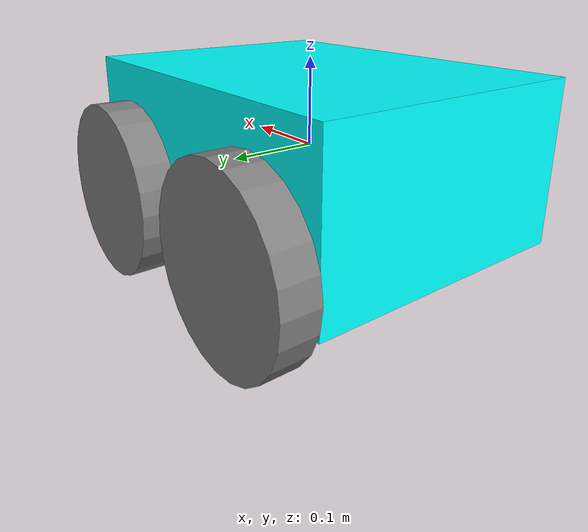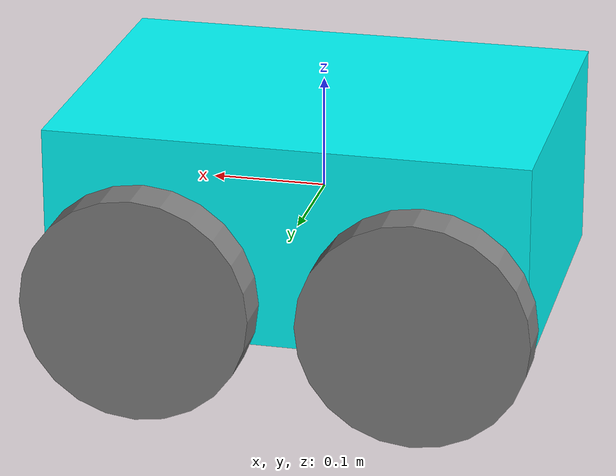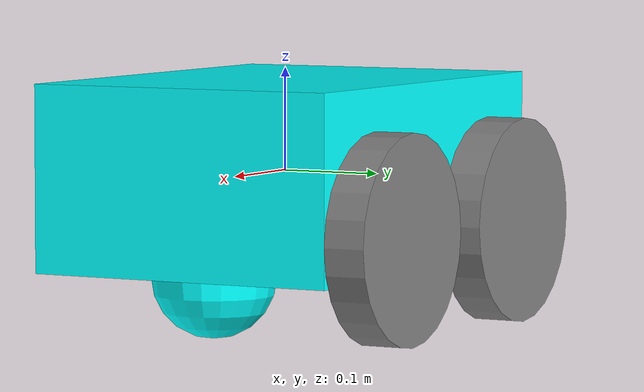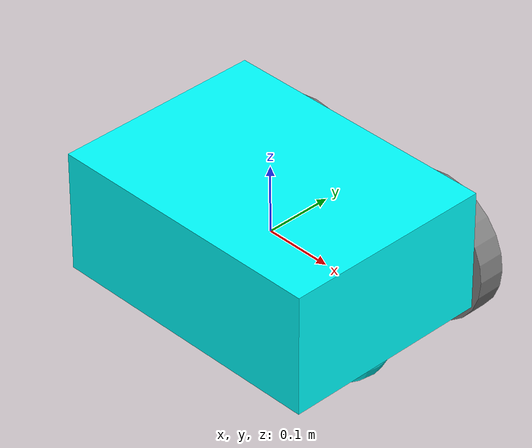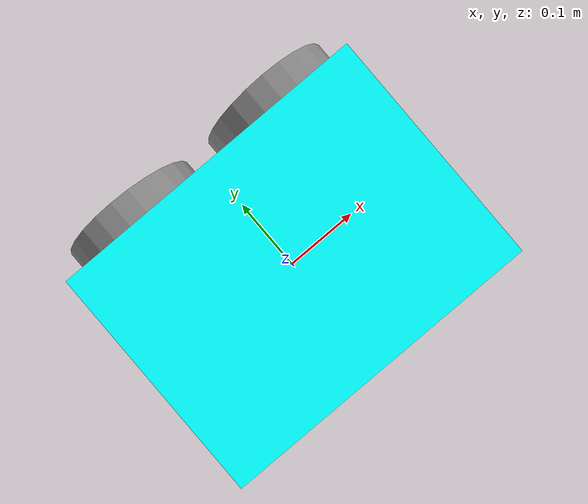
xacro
<?xml version="1.0"?>
<robot name="ballie_bot" xmlns:xacro="http://ros.org/wiki/xacro">

  <!-- Define robot constants -->
  <xacro:property name="base_width" value="0.31"/>
  <xacro:property name="base_length" value="0.42"/>
  <xacro:property name="base_height" value="0.18"/>

  <xacro:property name="wheel_radius" value="0.10"/>
  <xacro:property name="wheel_width" value="0.04"/>
  <xacro:property name="wheel_ygap" value="0.025"/>
  <xacro:property name="wheel_zoff" value="0.05"/>
  <xacro:property name="wheel_xoff" value="0.12"/>

  <xacro:property name="caster_xoff" value="0.14"/>

    <!-- Robot Base -->
  <link name="base_link">
    <visual>
      <geometry>
        <box size="${base_length} ${base_width} ${base_height}"/>
      </geometry>
      <material name="Cyan">
        <color rgba="0 1.0 1.0 1.0"/>
      </material>
    </visual>
  </link>

    <!-- Robot Footprint -->
  <link name="base_footprint"/>

  <joint name="base_joint" type="fixed">
    <parent link="base_link"/>
    <child link="base_footprint"/>
    <origin xyz="0.0 0.0 ${-(wheel_radius+wheel_zoff)}" rpy="0 0 0"/>
  </joint>

  <!-- wheels -->
  <link name="drivewhl_l_link">
    <visual>
      <origin xyz="0 0 0" rpy="${pi/2} 0 0"/>
      <geometry>
          <cylinder radius="${wheel_radius}" length="${wheel_width}"/>
      </geometry>
      <material name="Gray">
        <color rgba="0.5 0.5 0.5 1.0"/>
      </material>
    </visual>
  </link>

  <joint name="$drivewhl_l_joint" type="continuous">
    <parent link="base_link"/>
    <child link="drivewhl_l_link"/>
    <origin xyz="${1*wheel_xoff} ${1*(base_width/2+wheel_ygap)} ${-wheel_zoff}" rpy="0 0 0"/>
    <axis xyz="0 1 0"/>
  </joint>

  <link name="drivewhl_r_link">
    <visual>
      <origin xyz="0 0 0" rpy="${pi/2} 0 0"/>
      <geometry>
        <cylinder radius="${wheel_radius}" length="${wheel_width}"/>
      </geometry>
      <material name="Gray">
        <color rgba="0.5 0.5 0.5 1.0"/>
      </material>
    </visual>
  </link>

  <joint name="$drivewhl_r_joint" type="continuous">
    <parent link="base_link"/>
    <child link="drivewhl_r_link"/>
    <origin xyz="${-1*wheel_xoff} ${1*(base_width/2+wheel_ygap)} ${-wheel_zoff}" rpy="0 0 0"/>
    <axis xyz="0 1 0"/>
  </joint>

    <!-- Caster Wheel -->
  <link name="front_caster">
    <visual>
      <geometry>
        <sphere radius="${(wheel_radius+wheel_zoff-(base_height/2))}"/>
      </geometry>
      <material name="Cyan">
        <color rgba="0 1.0 1.0 1.0"/>
      </material>
    </visual>
  </link>

  <joint name="caster_joint" type="fixed">
    <parent link="base_link"/>
    <child link="front_caster"/>
    <origin xyz="${caster_xoff} 0.0 ${-(base_height/2)}" rpy="0 0 0"/>
  </joint>

</robot>
